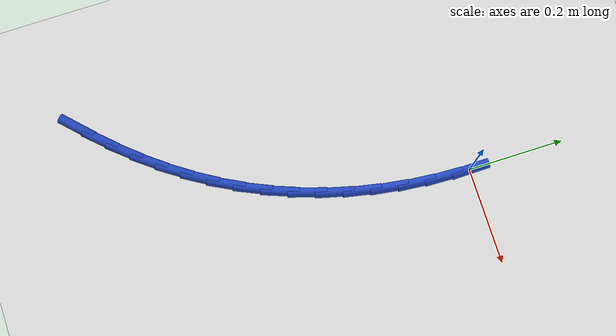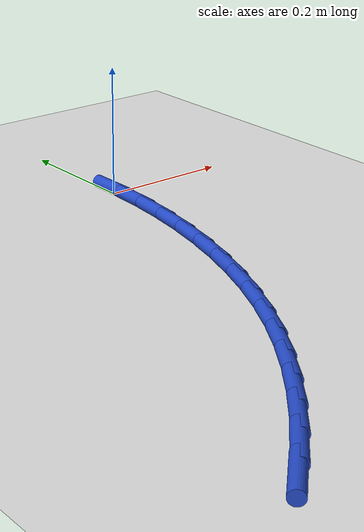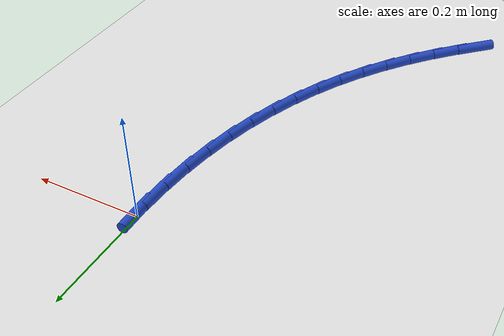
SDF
<sdf version="1.6">
 <world name="default">
  <model name="ground_plane">
   <static>1</static>
   <link name="link">
    <collision name="collision">
     <geometry><plane><normal>0 0 1</normal><size>100 100</size></plane></geometry>
     <surface><friction><ode><mu>100</mu><mu2>50</mu2></ode></friction></surface>
    </collision>
    <visual name="visual">
     <cast_shadows>0</cast_shadows>
     <geometry><plane><normal>0 0 1</normal><size>100 100</size></plane></geometry>
     <material>
      <script><uri>file://media/materials/scripts/gazebo.material</uri><name>Gazebo/WhiteGlow</name></script>
     </material>
    </visual>
   </link>
  </model>
  <model name="line">
   <link name="link_115">
    <pose>-0.3298811853364107 -0.7377317461417584 0.01 0 1.57 0.7673295646013235</pose>
    <collision name="collision">
     <geometry><cylinder><radius>0.01</radius><length>0.08</length></cylinder></geometry>
    </collision>
    <visual name="visual">
     <material>
      <script><name>Gazebo/Blue</name><uri>file://media/materials/scripts/gazebo.material</uri></script>
     </material>
     <geometry><cylinder><radius>0.01</radius><length>0.08</length></cylinder></geometry>
    </visual>
   </link>
   <link name="link_116">
    <pose>-0.2895248813077934 -0.6988080760672096 0.01 0 1.57 0.8143270348434625</pose>
    <collision name="collision">
     <geometry><cylinder><radius>0.01</radius><length>0.08</length></cylinder></geometry>
    </collision>
    <visual name="visual">
     <material>
      <script><name>Gazebo/Blue</name><uri>file://media/materials/scripts/gazebo.material</uri></script>
     </material>
     <geometry><cylinder><radius>0.01</radius><length>0.08</length></cylinder></geometry>
    </visual>
   </link>
   <link name="link_117">
    <pose>-0.2513740847826892 -0.6583835498159446 0.01 0 1.57 0.8642907796391035</pose>
    <collision name="collision">
     <geometry><cylinder><radius>0.01</radius><length>0.08</length></cylinder></geometry>
    </collision>
    <visual name="visual">
     <material>
      <script><name>Gazebo/Blue</name><uri>file://media/materials/scripts/gazebo.material</uri></script>
     </material>
     <geometry><cylinder><radius>0.01</radius><length>0.08</length></cylinder></geometry>
    </visual>
   </link>
   <link name="link_118">
    <pose>-0.2155518967445677 -0.6164111806665619 0.01 0 1.57 0.917162480663037</pose>
    <collision name="collision">
     <geometry><cylinder><radius>0.01</radius><length>0.08</length></cylinder></geometry>
    </collision>
    <visual name="visual">
     <material>
      <script><name>Gazebo/Blue</name><uri>file://media/materials/scripts/gazebo.material</uri></script>
     </material>
     <geometry><cylinder><radius>0.01</radius><length>0.08</length></cylinder></geometry>
    </visual>
   </link>
   <link name="link_119">
    <pose>-0.18218141817690034 -0.572843981897662 0.01 0 1.57 0.9728103297575923</pose>
    <collision name="collision">
     <geometry><cylinder><radius>0.01</radius><length>0.08</length></cylinder></geometry>
    </collision>
    <visual name="visual">
     <material>
      <script><name>Gazebo/Blue</name><uri>file://media/materials/scripts/gazebo.material</uri></script>
     </material>
     <geometry><cylinder><radius>0.01</radius><length>0.08</length></cylinder></geometry>
    </visual>
   </link>
   <link name="link_120">
    <pose>-0.15138575006315685 -0.5276349667878433 0.01 0 1.57 1.0310188667738824</pose>
    <collision name="collision">
     <geometry><cylinder><radius>0.01</radius><length>0.08</length></cylinder></geometry>
    </collision>
    <visual name="visual">
     <material>
      <script><name>Gazebo/Blue</name><uri>file://media/materials/scripts/gazebo.material</uri></script>
     </material>
     <geometry><cylinder><radius>0.01</radius><length>0.08</length></cylinder></geometry>
    </visual>
   </link>
   <link name="link_121">
    <pose>-0.12328799338680736 -0.4807371486157051 0.01 0 1.57 1.0912976214918495</pose>
    <collision name="collision">
     <geometry><cylinder><radius>0.01</radius><length>0.08</length></cylinder></geometry>
    </collision>
    <visual name="visual">
     <material>
      <script><name>Gazebo/Blue</name><uri>file://media/materials/scripts/gazebo.material</uri></script>
     </material>
     <geometry><cylinder><radius>0.01</radius><length>0.08</length></cylinder></geometry>
    </visual>
   </link>
   <link name="link_122">
    <pose>-0.09800572888268308 -0.43211496376459546 0.01 0 1.57 1.1512381214489449</pose>
    <collision name="collision">
     <geometry><cylinder><radius>0.01</radius><length>0.08</length></cylinder></geometry>
    </collision>
    <visual name="visual">
     <material>
      <script><name>Gazebo/Blue</name><uri>file://media/materials/scripts/gazebo.material</uri></script>
     </material>
     <geometry><cylinder><radius>0.01</radius><length>0.08</length></cylinder></geometry>
    </visual>
   </link>
   <link name="link_123">
    <pose>-0.07559237422344206 -0.38186562187285344 0.01 0 1.57 1.2095297669449014</pose>
    <collision name="collision">
     <geometry><cylinder><radius>0.01</radius><length>0.08</length></cylinder></geometry>
    </collision>
    <visual name="visual">
     <material>
      <script><name>Gazebo/Blue</name><uri>file://media/materials/scripts/gazebo.material</uri></script>
     </material>
     <geometry><cylinder><radius>0.01</radius><length>0.08</length></cylinder></geometry>
    </visual>
   </link>
   <link name="link_124">
    <pose>-0.05605995622412095 -0.3301719830871869 0.01 0 1.57 1.2663272264208756</pose>
    <collision name="collision">
     <geometry><cylinder><radius>0.01</radius><length>0.08</length></cylinder></geometry>
    </collision>
    <visual name="visual">
     <material>
      <script><name>Gazebo/Blue</name><uri>file://media/materials/scripts/gazebo.material</uri></script>
     </material>
     <geometry><cylinder><radius>0.01</radius><length>0.08</length></cylinder></geometry>
    </visual>
   </link>
   <link name="link_125">
    <pose>-0.03941981206174611 -0.27721833462901024 0.01 0 1.57 1.321829232941443</pose>
    <collision name="collision">
     <geometry><cylinder><radius>0.01</radius><length>0.08</length></cylinder></geometry>
    </collision>
    <visual name="visual">
     <material>
      <script><name>Gazebo/Blue</name><uri>file://media/materials/scripts/gazebo.material</uri></script>
     </material>
     <geometry><cylinder><radius>0.01</radius><length>0.08</length></cylinder></geometry>
    </visual>
   </link>
   <link name="link_126">
    <pose>-0.02568327891334402 -0.22318896371973748 0.01 0 1.57 1.3762487214019563</pose>
    <collision name="collision">
     <geometry><cylinder><radius>0.01</radius><length>0.08</length></cylinder></geometry>
    </collision>
    <visual name="visual">
     <material>
      <script><name>Gazebo/Blue</name><uri>file://media/materials/scripts/gazebo.material</uri></script>
     </material>
     <geometry><cylinder><radius>0.01</radius><length>0.08</length></cylinder></geometry>
    </visual>
   </link>
   <link name="link_127">
    <pose>-0.0148616939559418 -0.16826815758078556 0.01 0 1.57 1.4298075659647418</pose>
    <collision name="collision">
     <geometry><cylinder><radius>0.01</radius><length>0.08</length></cylinder></geometry>
    </collision>
    <visual name="visual">
     <material>
      <script><name>Gazebo/Blue</name><uri>file://media/materials/scripts/gazebo.material</uri></script>
     </material>
     <geometry><cylinder><radius>0.01</radius><length>0.08</length></cylinder></geometry>
    </visual>
   </link>
   <link name="link_128">
    <pose>-0.006966394366565929 -0.11264020343356865 0.01 0 1.57 1.4827325215296487</pose>
    <collision name="collision">
     <geometry><cylinder><radius>0.01</radius><length>0.08</length></cylinder></geometry>
    </collision>
    <visual name="visual">
     <material>
      <script><name>Gazebo/Blue</name><uri>file://media/materials/scripts/gazebo.material</uri></script>
     </material>
     <geometry><cylinder><radius>0.01</radius><length>0.08</length></cylinder></geometry>
    </visual>
   </link>
   <link name="link_129">
    <pose>-0.002008717322243102 -0.05648938849950182 0.01 0 1.57 1.5352521056219932</pose>
    <collision name="collision">
     <geometry><cylinder><radius>0.01</radius><length>0.08</length></cylinder></geometry>
    </collision>
    <visual name="visual">
     <material>
      <script><name>Gazebo/Blue</name><uri>file://media/materials/scripts/gazebo.material</uri></script>
     </material>
     <geometry><cylinder><radius>0.01</radius><length>0.08</length></cylinder></geometry>
    </visual>
   </link>
   <link name="link_130">
    <pose>6.938893903907228e-18 -9.71445146547012e-17 0.01 0 1.57 -1.5539985099783191</pose>
    <collision name="collision">
     <geometry><cylinder><radius>0.01</radius><length>0.08</length></cylinder></geometry>
    </collision>
    <visual name="visual">
     <material>
      <script><name>Gazebo/Blue</name><uri>file://media/materials/scripts/gazebo.material</uri></script>
     </material>
     <geometry><cylinder><radius>0.01</radius><length>0.08</length></cylinder></geometry>
    </visual>
   </link>
  </model>
 </world>
</sdf>
